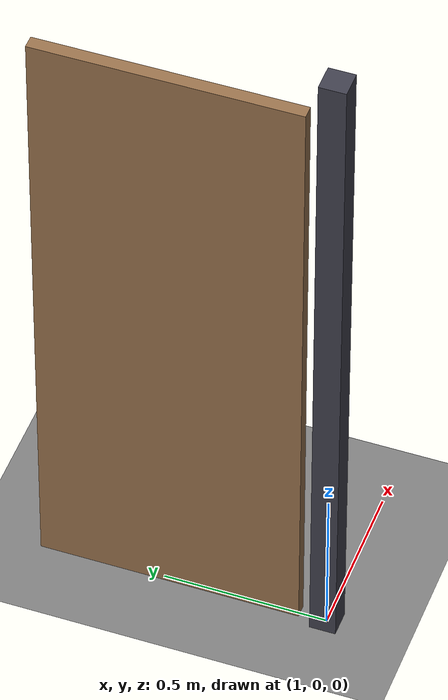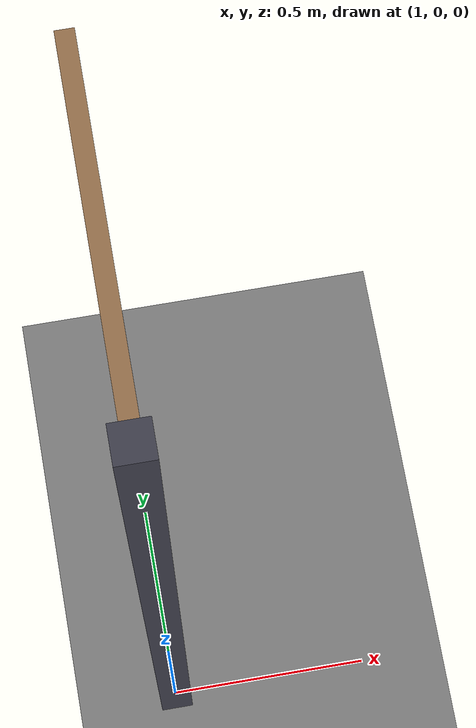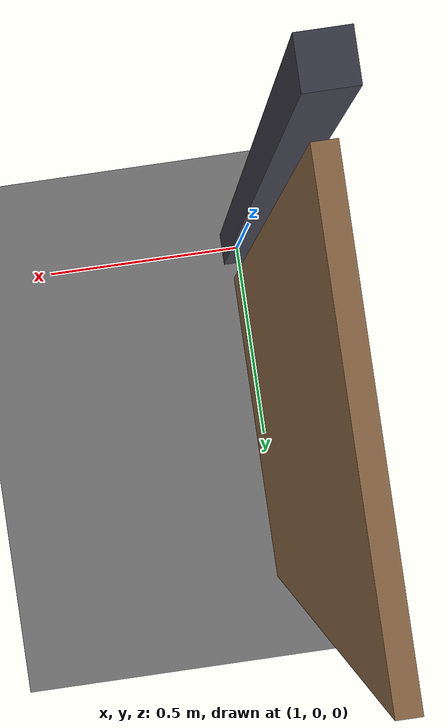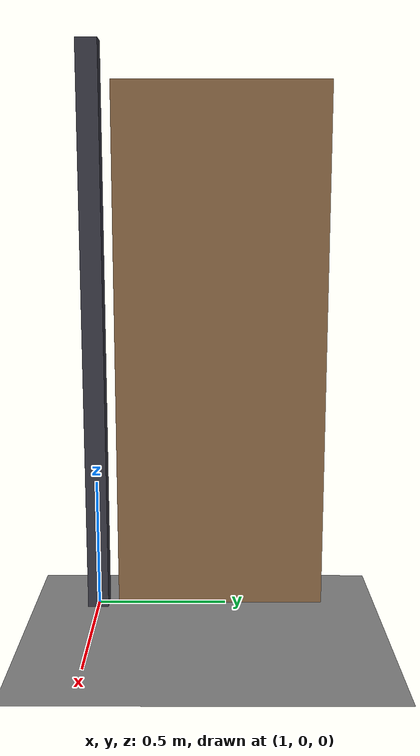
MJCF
<mujoco model="a_door_swings_shut_and_stays_shut">
  <compiler angle="radian"/>
  <option timestep="0.002"/>
  <worldbody>
    <geom name="floor" type="plane" size="6 6 0.1" friction="0.8 0.005 0.002"/>
    <body name="jamb">
      <geom name="jamb" type="box" pos="1 0 1.075" size="0.04 0.04 1.075" rgba="0.25 0.25 0.3 1"/>
    </body>
    <body name="door" pos="1 0.08 1.01">
      <joint name="hinge" type="hinge" pos="0 0 0" axis="0 0 1" limited="true" range="0 1.91986" stiffness="20" springref="-0.174533" damping="6"/>
      <geom name="door" type="box" pos="0 0.4 2.22045e-16" size="0.02 0.4 1" mass="20" rgba="0.6 0.45 0.3 1"/>
    </body>
  </worldbody>
  <keyframe>
    <key name="start" qpos="1.309" qvel="0"/>
  </keyframe>
</mujoco>
